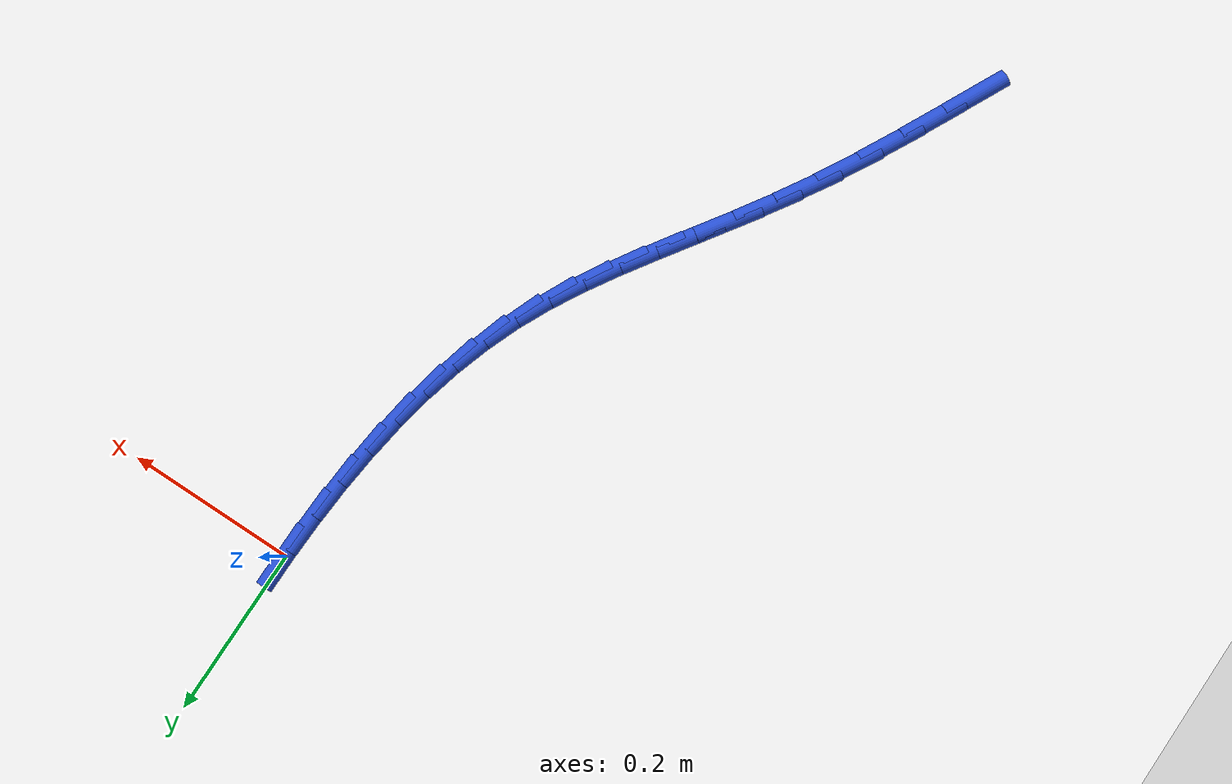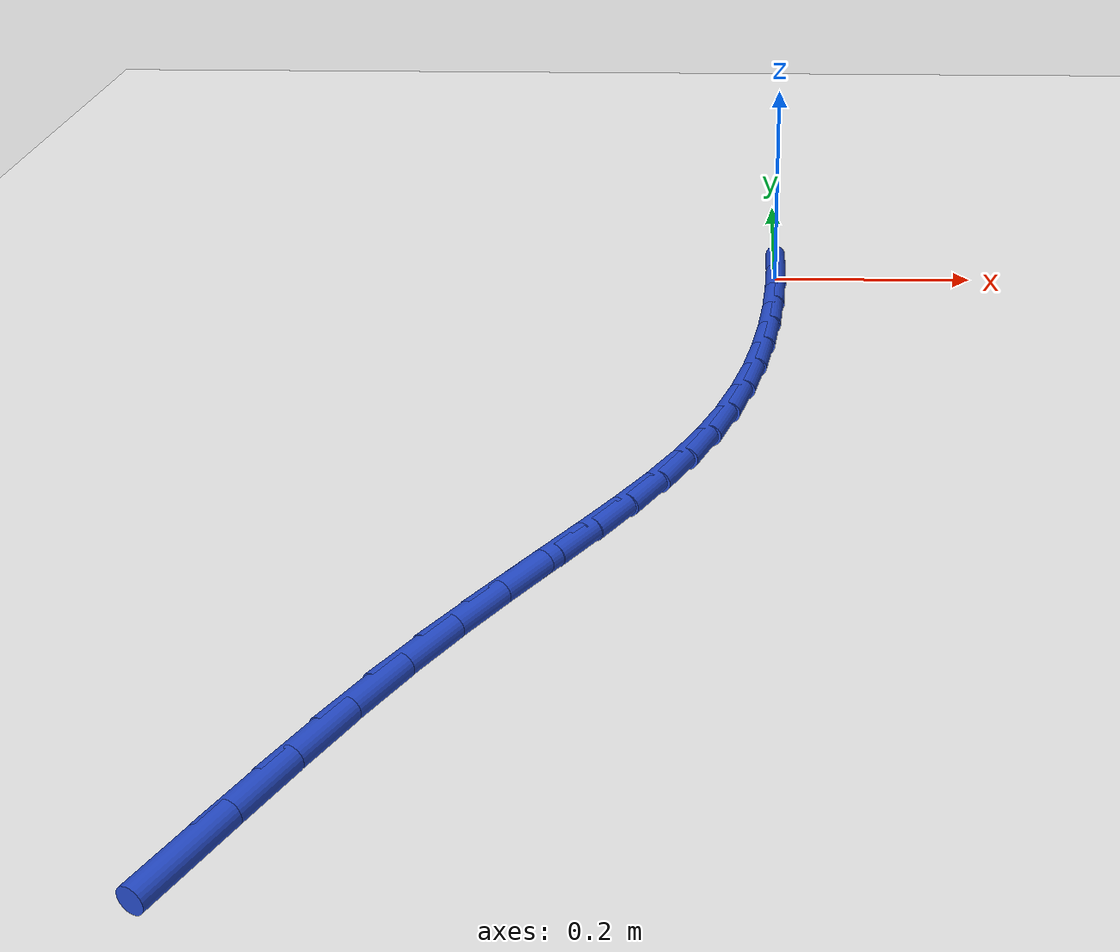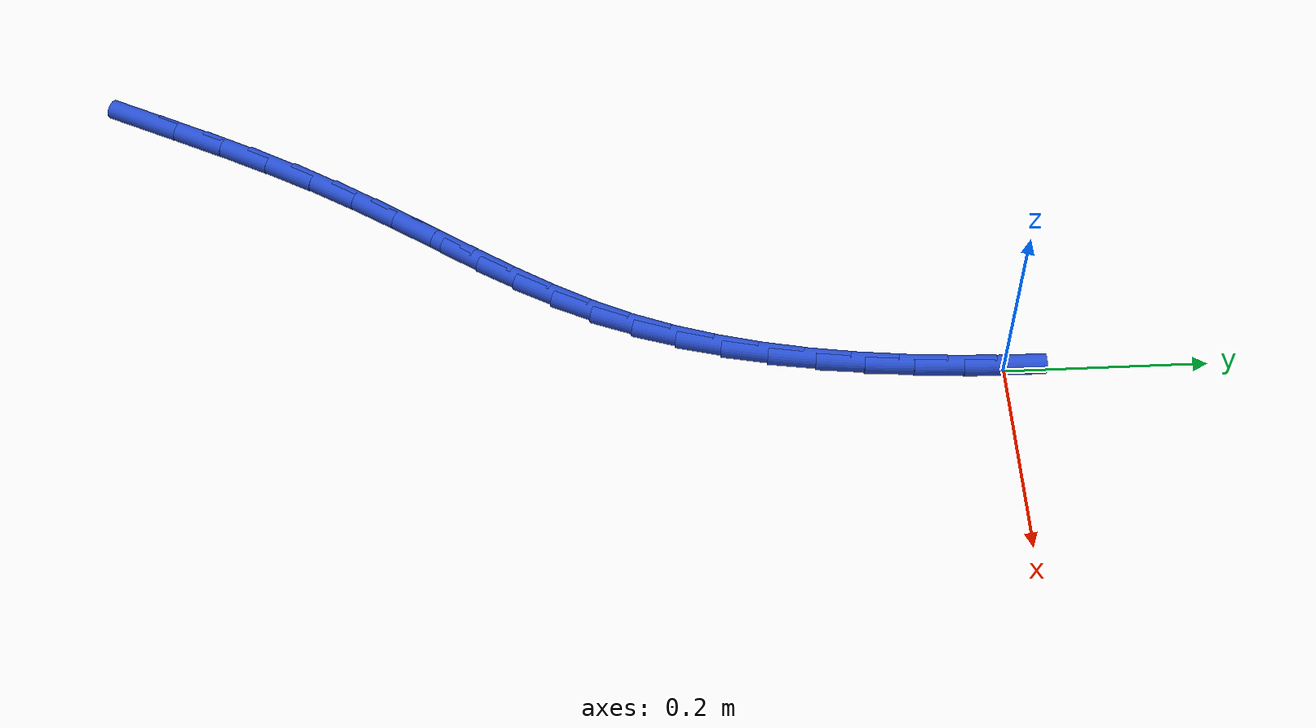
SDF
<sdf version="1.6">
 <world name="default">
  <model name="ground_plane">
   <static>1</static>
   <link name="link">
    <collision name="collision">
     <geometry><plane><normal>0 0 1</normal><size>100 100</size></plane></geometry>
     <surface><friction><ode><mu>100</mu><mu2>50</mu2></ode></friction></surface>
    </collision>
    <visual name="visual">
     <cast_shadows>0</cast_shadows>
     <geometry><plane><normal>0 0 1</normal><size>100 100</size></plane></geometry>
     <material>
      <script><uri>file://media/materials/scripts/gazebo.material</uri><name>Gazebo/WhiteGlow</name></script>
     </material>
    </visual>
   </link>
  </model>
  <model name="line">
   <link name="link_150">
    <pose>-0.3578619124238918 -0.8595229082451946 0.01 0 1.57 1.1105096009219568</pose>
    <collision name="collision">
     <geometry><cylinder><radius>0.01</radius><length>0.08</length></cylinder></geometry>
    </collision>
    <visual name="visual">
     <material>
      <script><name>Gazebo/Blue</name><uri>file://media/materials/scripts/gazebo.material</uri></script>
     </material>
     <geometry><cylinder><radius>0.01</radius><length>0.08</length></cylinder></geometry>
    </visual>
   </link>
   <link name="link_151">
    <pose>-0.33315495465954953 -0.8096909954754694 0.01 0 1.57 1.102243104390153</pose>
    <collision name="collision">
     <geometry><cylinder><radius>0.01</radius><length>0.08</length></cylinder></geometry>
    </collision>
    <visual name="visual">
     <material>
      <script><name>Gazebo/Blue</name><uri>file://media/materials/scripts/gazebo.material</uri></script>
     </material>
     <geometry><cylinder><radius>0.01</radius><length>0.08</length></cylinder></geometry>
    </visual>
   </link>
   <link name="link_152">
    <pose>-0.30827967066410783 -0.7605446468313696 0.01 0 1.57 1.0842440771927981</pose>
    <collision name="collision">
     <geometry><cylinder><radius>0.01</radius><length>0.08</length></cylinder></geometry>
    </collision>
    <visual name="visual">
     <material>
      <script><name>Gazebo/Blue</name><uri>file://media/materials/scripts/gazebo.material</uri></script>
     </material>
     <geometry><cylinder><radius>0.01</radius><length>0.08</length></cylinder></geometry>
    </visual>
   </link>
   <link name="link_153">
    <pose>-0.2830716686018082 -0.7128895514288685 0.01 0 1.57 1.0552216841026738</pose>
    <collision name="collision">
     <geometry><cylinder><radius>0.01</radius><length>0.08</length></cylinder></geometry>
    </collision>
    <visual name="visual">
     <material>
      <script><name>Gazebo/Blue</name><uri>file://media/materials/scripts/gazebo.material</uri></script>
     </material>
     <geometry><cylinder><radius>0.01</radius><length>0.08</length></cylinder></geometry>
    </visual>
   </link>
   <link name="link_154">
    <pose>-0.25736682005038886 -0.6675307649051033 0.01 0 1.57 1.0189961030603867</pose>
    <collision name="collision">
     <geometry><cylinder><radius>0.01</radius><length>0.08</length></cylinder></geometry>
    </collision>
    <visual name="visual">
     <material>
      <script><name>Gazebo/Blue</name><uri>file://media/materials/scripts/gazebo.material</uri></script>
     </material>
     <geometry><cylinder><radius>0.01</radius><length>0.08</length></cylinder></geometry>
    </visual>
   </link>
   <link name="link_155">
    <pose>-0.23114322852464325 -0.6249312916200912 0.01 0 1.57 0.9908786268567107</pose>
    <collision name="collision">
     <geometry><cylinder><radius>0.01</radius><length>0.08</length></cylinder></geometry>
    </collision>
    <visual name="visual">
     <material>
      <script><name>Gazebo/Blue</name><uri>file://media/materials/scripts/gazebo.material</uri></script>
     </material>
     <geometry><cylinder><radius>0.01</radius><length>0.08</length></cylinder></geometry>
    </visual>
   </link>
   <link name="link_156">
    <pose>-0.2047557243649735 -0.5846481517049193 0.01 0 1.57 0.9751210711054349</pose>
    <collision name="collision">
     <geometry><cylinder><radius>0.01</radius><length>0.08</length></cylinder></geometry>
    </collision>
    <visual name="visual">
     <material>
      <script><name>Gazebo/Blue</name><uri>file://media/materials/scripts/gazebo.material</uri></script>
     </material>
     <geometry><cylinder><radius>0.01</radius><length>0.08</length></cylinder></geometry>
    </visual>
   </link>
   <link name="link_157">
    <pose>-0.1786208023155097 -0.5460900695669137 0.01 0 1.57 0.9733032476918577</pose>
    <collision name="collision">
     <geometry><cylinder><radius>0.01</radius><length>0.08</length></cylinder></geometry>
    </collision>
    <visual name="visual">
     <material>
      <script><name>Gazebo/Blue</name><uri>file://media/materials/scripts/gazebo.material</uri></script>
     </material>
     <geometry><cylinder><radius>0.01</radius><length>0.08</length></cylinder></geometry>
    </visual>
   </link>
   <link name="link_158">
    <pose>-0.15315495712038152 -0.5086657696133996 0.01 0 1.57 0.9867004961988574</pose>
    <collision name="collision">
     <geometry><cylinder><radius>0.01</radius><length>0.08</length></cylinder></geometry>
    </collision>
    <visual name="visual">
     <material>
      <script><name>Gazebo/Blue</name><uri>file://media/materials/scripts/gazebo.material</uri></script>
     </material>
     <geometry><cylinder><radius>0.01</radius><length>0.08</length></cylinder></geometry>
    </visual>
   </link>
   <link name="link_159">
    <pose>-0.12877468352372007 -0.47178397625170376 0.01 0 1.57 1.0161672509525324</pose>
    <collision name="collision">
     <geometry><cylinder><radius>0.01</radius><length>0.08</length></cylinder></geometry>
    </collision>
    <visual name="visual">
     <material>
      <script><name>Gazebo/Blue</name><uri>file://media/materials/scripts/gazebo.material</uri></script>
     </material>
     <geometry><cylinder><radius>0.01</radius><length>0.08</length></cylinder></geometry>
    </visual>
   </link>
   <link name="link_160">
    <pose>-0.10589647626965495 -0.4348534138891517 0.01 0 1.57 1.0619283026771844</pose>
    <collision name="collision">
     <geometry><cylinder><radius>0.01</radius><length>0.08</length></cylinder></geometry>
    </collision>
    <visual name="visual">
     <material>
      <script><name>Gazebo/Blue</name><uri>file://media/materials/scripts/gazebo.material</uri></script>
     </material>
     <geometry><cylinder><radius>0.01</radius><length>0.08</length></cylinder></geometry>
    </visual>
   </link>
   <link name="link_161">
    <pose>-0.08493683010231627 -0.39728280693306933 0.01 0 1.57 1.1232822285802722</pose>
    <collision name="collision">
     <geometry><cylinder><radius>0.01</radius><length>0.08</length></cylinder></geometry>
    </collision>
    <visual name="visual">
     <material>
      <script><name>Gazebo/Blue</name><uri>file://media/materials/scripts/gazebo.material</uri></script>
     </material>
     <geometry><cylinder><radius>0.01</radius><length>0.08</length></cylinder></geometry>
    </visual>
   </link>
   <link name="link_162">
    <pose>-0.06631220652912354 -0.3584809232904901 0.01 0 1.57 1.1944407452821666</pose>
    <collision name="collision">
     <geometry><cylinder><radius>0.01</radius><length>0.08</length></cylinder></geometry>
    </collision>
    <visual name="visual">
     <material>
      <script><name>Gazebo/Blue</name><uri>file://media/materials/scripts/gazebo.material</uri></script>
     </material>
     <geometry><cylinder><radius>0.01</radius><length>0.08</length></cylinder></geometry>
    </visual>
   </link>
   <link name="link_163">
    <pose>-0.05031954783013955 -0.3180129558396634 0.01 0 1.57 1.2612567835791018</pose>
    <collision name="collision">
     <geometry><cylinder><radius>0.01</radius><length>0.08</length></cylinder></geometry>
    </collision>
    <visual name="visual">
     <material>
      <script><name>Gazebo/Blue</name><uri>file://media/materials/scripts/gazebo.material</uri></script>
     </material>
     <geometry><cylinder><radius>0.01</radius><length>0.08</length></cylinder></geometry>
    </visual>
   </link>
   <link name="link_164">
    <pose>-0.03686764953316741 -0.2759520981035288 0.01 0 1.57 1.321242420490559</pose>
    <collision name="collision">
     <geometry><cylinder><radius>0.01</radius><length>0.08</length></cylinder></geometry>
    </collision>
    <visual name="visual">
     <material>
      <script><name>Gazebo/Blue</name><uri>file://media/materials/scripts/gazebo.material</uri></script>
     </material>
     <geometry><cylinder><radius>0.01</radius><length>0.08</length></cylinder></geometry>
    </visual>
   </link>
   <link name="link_165">
    <pose>-0.025786650420464335 -0.2324744883732422 0.01 0 1.57 1.3747704749774454</pose>
    <collision name="collision">
     <geometry><cylinder><radius>0.01</radius><length>0.08</length></cylinder></geometry>
    </collision>
    <visual name="visual">
     <material>
      <script><name>Gazebo/Blue</name><uri>file://media/materials/scripts/gazebo.material</uri></script>
     </material>
     <geometry><cylinder><radius>0.01</radius><length>0.08</length></cylinder></geometry>
    </visual>
   </link>
   <link name="link_166">
    <pose>-0.016906689274287894 -0.1877562649399598 0.01 0 1.57 1.422304166449414</pose>
    <collision name="collision">
     <geometry><cylinder><radius>0.01</radius><length>0.08</length></cylinder></geometry>
    </collision>
    <visual name="visual">
     <material>
      <script><name>Gazebo/Blue</name><uri>file://media/materials/scripts/gazebo.material</uri></script>
     </material>
     <geometry><cylinder><radius>0.01</radius><length>0.08</length></cylinder></geometry>
    </visual>
   </link>
   <link name="link_167">
    <pose>-0.01005790487689568 -0.14197356609483822 0.01 0 1.57 1.4643360309122582</pose>
    <collision name="collision">
     <geometry><cylinder><radius>0.01</radius><length>0.08</length></cylinder></geometry>
    </collision>
    <visual name="visual">
     <material>
      <script><name>Gazebo/Blue</name><uri>file://media/materials/scripts/gazebo.material</uri></script>
     </material>
     <geometry><cylinder><radius>0.01</radius><length>0.08</length></cylinder></geometry>
    </visual>
   </link>
   <link name="link_168">
    <pose>-0.005070436010545168 -0.09530253012903268 0.01 0 1.57 1.5013474214052716</pose>
    <collision name="collision">
     <geometry><cylinder><radius>0.01</radius><length>0.08</length></cylinder></geometry>
    </collision>
    <visual name="visual">
     <material>
      <script><name>Gazebo/Blue</name><uri>file://media/materials/scripts/gazebo.material</uri></script>
     </material>
     <geometry><cylinder><radius>0.01</radius><length>0.08</length></cylinder></geometry>
    </visual>
   </link>
   <link name="link_169">
    <pose>-0.0017744214574941216 -0.047919295333701435 0.01 0 1.57 1.5337838645305693</pose>
    <collision name="collision">
     <geometry><cylinder><radius>0.01</radius><length>0.08</length></cylinder></geometry>
    </collision>
    <visual name="visual">
     <material>
      <script><name>Gazebo/Blue</name><uri>file://media/materials/scripts/gazebo.material</uri></script>
     </material>
     <geometry><cylinder><radius>0.01</radius><length>0.08</length></cylinder></geometry>
    </visual>
   </link>
   <link name="link_170">
    <pose>0.0 2.7755575615628914e-17 0.01 0 1.57 1.5620414463022998</pose>
    <collision name="collision">
     <geometry><cylinder><radius>0.01</radius><length>0.08</length></cylinder></geometry>
    </collision>
    <visual name="visual">
     <material>
      <script><name>Gazebo/Blue</name><uri>file://media/materials/scripts/gazebo.material</uri></script>
     </material>
     <geometry><cylinder><radius>0.01</radius><length>0.08</length></cylinder></geometry>
    </visual>
   </link>
  </model>
 </world>
</sdf>
